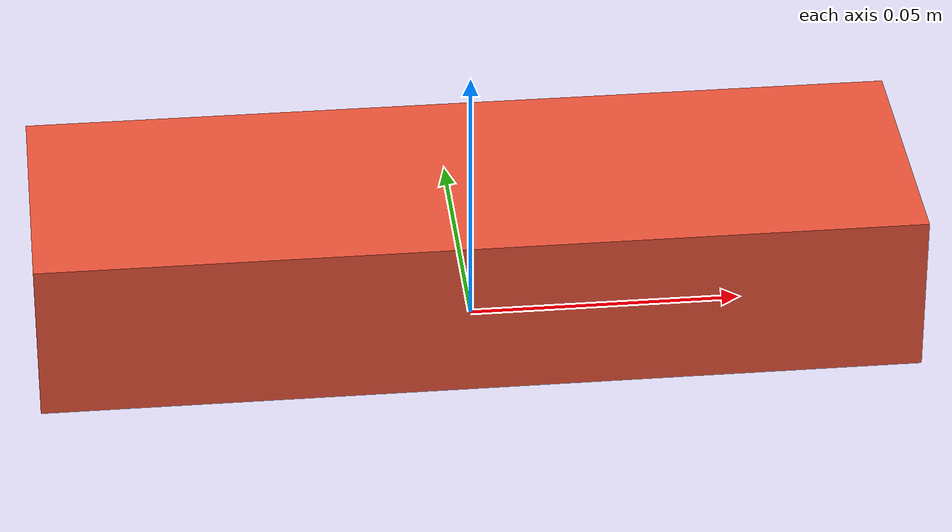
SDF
<?xml version="1.0"?>
<sdf version="1.9">
  <model name="contact_validation_pad">
    <static>true</static>
    <link name="contact_validation_pad_link">
      <pose>0 0 0.015 0 0 0</pose>

      <collision name="contact_validation_pad_collision">
        <geometry><box><size>0.16 0.05 0.03</size></box></geometry>
        <surface>
          <contact>
            <ode>
              <kp>200000</kp>
              <kd>20</kd>
            </ode>
          </contact>
          <friction>
            <ode>
              <mu>0.8</mu>
              <mu2>0.8</mu2>
            </ode>
          </friction>
        </surface>
      </collision>

      <sensor name="contact_validation_sensor" type="contact">
        <always_on>true</always_on>
        <update_rate>100.0</update_rate>
        <topic>/gazebo/contacts/validation</topic>
        <contact>
          <collision>contact_validation_pad_collision</collision>
        </contact>
      </sensor>

      <visual name="contact_validation_pad_visual">
        <geometry><box><size>0.16 0.05 0.03</size></box></geometry>
        <material>
          <ambient>0.80 0.22 0.18 1</ambient>
          <diffuse>0.92 0.32 0.22 1</diffuse>
          <specular>0.20 0.20 0.20 1</specular>
        </material>
      </visual>
    </link>
  </model>
</sdf>
